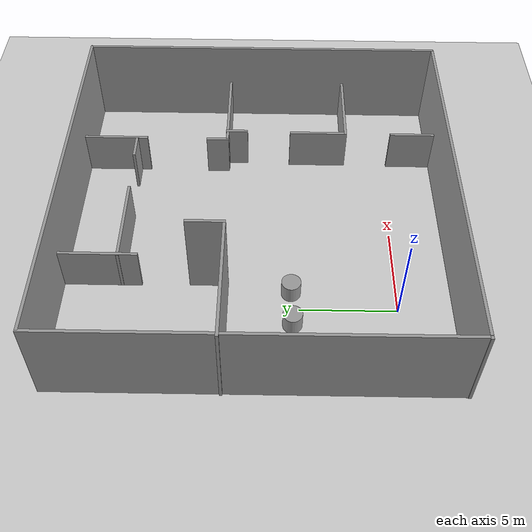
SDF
<sdf version="1.7">
 <world name="default">
  <light name="sun" type="directional">
   <pose>0 0 10 0 -0 0</pose>
   <diffuse>0.8 0.8 0.8 1</diffuse>
   <specular>0.2 0.2 0.2 1</specular>
   <attenuation>
    <range>1000</range>
    <constant>0.9</constant>
    <linear>0.01</linear>
    <quadratic>0.001</quadratic>
   </attenuation>
   <direction>-0.5 0.1 -0.9</direction>
   <spot><inner_angle>0</inner_angle><outer_angle>0</outer_angle><falloff>0</falloff></spot>
  </light>
  <model name="ground_plane">
   <static>1</static>
   <link name="link">
    <collision name="collision">
     <geometry><plane><normal>0 0 1</normal><size>100 100</size></plane></geometry>
     <surface>
      <contact><collide_bitmask>65535</collide_bitmask></contact>
      <friction><ode><mu>100</mu><mu2>50</mu2></ode></friction>
     </surface>
    </collision>
    <visual name="visual">
     <cast_shadows>0</cast_shadows>
     <geometry><plane><normal>0 0 1</normal><size>100 100</size></plane></geometry>
     <material>
      <script><uri>file://media/materials/scripts/gazebo.material</uri><name>Gazebo/Grey</name></script>
     </material>
    </visual>
   </link>
  </model>
  <gravity>0 0 -9.8</gravity>
  <magnetic_field>6e-06 2.3e-05 -4.2e-05</magnetic_field>
  <atmosphere type="adiabatic"/>
  <physics type="ode">
   <max_step_size>0.001</max_step_size>
   <real_time_factor>1</real_time_factor>
   <real_time_update_rate>1000</real_time_update_rate>
  </physics>
  <scene><ambient>0.4 0.4 0.4 1</ambient><background>0.7 0.7 0.7 1</background><shadows>1</shadows></scene>
  <audio><device>default</device></audio>
  <spherical_coordinates>
   <surface_model>EARTH_WGS84</surface_model>
   <latitude_deg>0</latitude_deg>
   <longitude_deg>0</longitude_deg>
   <elevation>0</elevation>
   <heading_deg>0</heading_deg>
  </spherical_coordinates>
  <model name="Untitled">
   <pose>5.18506 7.20775 0 0 -0 0</pose>
   <link name="Wall_19">
    <collision name="Wall_19_Collision">
     <geometry><box><size>20 0.15 5</size></box></geometry>
     <pose>0 0 2.5 0 -0 0</pose>
    </collision>
    <visual name="Wall_19_Visual">
     <pose>0 0 2.5 0 -0 0</pose>
     <geometry><box><size>20 0.15 5</size></box></geometry>
     <material>
      <script><uri>file://media/materials/scripts/gazebo.material</uri><name>Gazebo/Grey</name></script>
      <ambient>1 1 1 1</ambient>
     </material>
     <meta><layer>0</layer></meta>
    </visual>
    <pose>0.039105 9.99508 0 0 -0 0</pose>
   </link>
   <link name="Wall_22">
    <collision name="Wall_22_Collision">
     <geometry><box><size>20 0.15 5</size></box></geometry>
     <pose>0 0 2.5 0 -0 0</pose>
    </collision>
    <visual name="Wall_22_Visual">
     <pose>0 0 2.5 0 -0 0</pose>
     <geometry><box><size>20 0.15 5</size></box></geometry>
     <material>
      <script><uri>file://media/materials/scripts/gazebo.material</uri><name>Gazebo/Grey</name></script>
      <ambient>1 1 1 1</ambient>
     </material>
     <meta><layer>0</layer></meta>
    </visual>
    <pose>0.005833 -10.0652 0 0 -0 0</pose>
   </link>
   <link name="Wall_24">
    <collision name="Wall_24_Collision">
     <geometry><box><size>20.15 0.15 5</size></box></geometry>
     <pose>0 0 2.5 0 -0 0</pose>
    </collision>
    <visual name="Wall_24_Visual">
     <pose>0 0 2.5 0 -0 0</pose>
     <geometry><box><size>20.15 0.15 5</size></box></geometry>
     <material>
      <script><uri>file://media/materials/scripts/gazebo.material</uri><name>Gazebo/Grey</name></script>
      <ambient>1 1 1 1</ambient>
     </material>
     <meta><layer>0</layer></meta>
    </visual>
    <pose>9.97144 -0.042701 0 0 -0 1.5708</pose>
   </link>
   <link name="Wall_27">
    <collision name="Wall_27_Collision">
     <geometry><box><size>6.5 0.15 5</size></box></geometry>
     <pose>0 0 2.5 0 -0 0</pose>
    </collision>
    <visual name="Wall_27_Visual">
     <pose>0 0 2.5 0 -0 0</pose>
     <geometry><box><size>6.5 0.15 5</size></box></geometry>
     <material>
      <script><uri>file://media/materials/scripts/gazebo.material</uri><name>Gazebo/Grey</name></script>
      <ambient>1 1 1 1</ambient>
     </material>
     <meta><layer>0</layer></meta>
    </visual>
    <pose>-6.81556 1.4993 0 0 -0 0</pose>
   </link>
   <link name="Wall_31">
    <collision name="Wall_31_Collision">
     <geometry><box><size>4.25 0.15 2.5</size></box></geometry>
     <pose>0 0 1.25 0 -0 0</pose>
    </collision>
    <visual name="Wall_31_Visual">
     <pose>0 0 1.25 0 -0 0</pose>
     <geometry><box><size>4.25 0.15 2.5</size></box></geometry>
     <material>
      <script><uri>file://media/materials/scripts/gazebo.material</uri><name>Gazebo/Grey</name></script>
      <ambient>1 1 1 1</ambient>
     </material>
     <meta><layer>0</layer></meta>
    </visual>
    <pose>-3.7095 8.01554 0 0 -0 1.5708</pose>
   </link>
   <link name="Wall_33">
    <collision name="Wall_33_Collision">
     <geometry><box><size>4.75 0.15 2.5</size></box></geometry>
     <pose>0 0 1.25 0 -0 0</pose>
    </collision>
    <visual name="Wall_33_Visual">
     <pose>0 0 1.25 0 -0 0</pose>
     <geometry><box><size>4.75 0.15 2.5</size></box></geometry>
     <material>
      <script><uri>file://media/materials/scripts/gazebo.material</uri><name>Gazebo/Grey</name></script>
      <ambient>1 1 1 1</ambient>
     </material>
     <meta><layer>0</layer></meta>
    </visual>
    <pose>-1.42813 6.91349 0 0 -0 0</pose>
   </link>
   <link name="Wall_35">
    <collision name="Wall_35_Collision">
     <geometry><box><size>3.75 0.15 2.5</size></box></geometry>
     <pose>0 0 1.25 0 -0 0</pose>
    </collision>
    <visual name="Wall_35_Visual">
     <pose>0 0 1.25 0 -0 0</pose>
     <geometry><box><size>3.75 0.15 2.5</size></box></geometry>
     <material>
      <script><uri>file://media/materials/scripts/gazebo.material</uri><name>Gazebo/Grey</name></script>
      <ambient>1 1 1 1</ambient>
     </material>
     <meta><layer>0</layer></meta>
    </visual>
    <pose>4.83227 8.23059 0 0 -0 -1.5708</pose>
   </link>
   <link name="Wall_37">
    <collision name="Wall_37_Collision">
     <geometry><box><size>1.5 0.15 2.5</size></box></geometry>
     <pose>0 0 1.25 0 -0 0</pose>
    </collision>
    <visual name="Wall_37_Visual">
     <pose>0 0 1.25 0 -0 0</pose>
     <geometry><box><size>1.5 0.15 2.5</size></box></geometry>
     <material>
      <script><uri>file://media/materials/scripts/gazebo.material</uri><name>Gazebo/Grey</name></script>
      <ambient>1 1 1 1</ambient>
     </material>
     <meta><layer>0</layer></meta>
    </visual>
    <pose>4.11074 6.96001 0 0 -0 3.14159</pose>
   </link>
   <link name="Wall_39">
    <collision name="Wall_39_Collision">
     <geometry><box><size>1.25 0.15 2.5</size></box></geometry>
     <pose>0 0 1.25 0 -0 0</pose>
    </collision>
    <visual name="Wall_39_Visual">
     <pose>0 0 1.25 0 -0 0</pose>
     <geometry><box><size>1.25 0.15 2.5</size></box></geometry>
     <material>
      <script><uri>file://media/materials/scripts/gazebo.material</uri><name>Gazebo/Grey</name></script>
      <ambient>1 1 1 1</ambient>
     </material>
     <meta><layer>0</layer></meta>
    </visual>
    <pose>4.78575 2.36243 0 0 -0 -1.5708</pose>
   </link>
   <link name="Wall_40">
    <collision name="Wall_40_Collision">
     <geometry><box><size>5.25 0.15 2.5</size></box></geometry>
     <pose>0 0 1.25 0 -0 0</pose>
    </collision>
    <visual name="Wall_40_Visual">
     <pose>0 0 1.25 0 -0 0</pose>
     <geometry><box><size>5.25 0.15 2.5</size></box></geometry>
     <material>
      <script><uri>file://media/materials/scripts/gazebo.material</uri><name>Gazebo/Grey</name></script>
      <ambient>1 1 1 1</ambient>
     </material>
     <meta><layer>0</layer></meta>
    </visual>
    <pose>7.33575 1.81243 0 0 -0 0</pose>
   </link>
   <link name="Wall_42">
    <collision name="Wall_42_Collision">
     <geometry><box><size>1.25 0.15 2.5</size></box></geometry>
     <pose>0 0 1.25 0 -0 0</pose>
    </collision>
    <visual name="Wall_42_Visual">
     <pose>0 0 1.25 0 -0 0</pose>
     <geometry><box><size>1.25 0.15 2.5</size></box></geometry>
     <material>
      <script><uri>file://media/materials/scripts/gazebo.material</uri><name>Gazebo/Grey</name></script>
      <ambient>1 1 1 1</ambient>
     </material>
     <meta><layer>0</layer></meta>
    </visual>
    <pose>5.4836 1.29238 0 0 -0 -1.5708</pose>
   </link>
   <link name="Wall_44">
    <collision name="Wall_44_Collision">
     <geometry><box><size>3.25 0.15 2.5</size></box></geometry>
     <pose>0 0 1.25 0 -0 0</pose>
    </collision>
    <visual name="Wall_44_Visual">
     <pose>0 0 1.25 0 -0 0</pose>
     <geometry><box><size>3.25 0.15 2.5</size></box></geometry>
     <material>
      <script><uri>file://media/materials/scripts/gazebo.material</uri><name>Gazebo/Grey</name></script>
      <ambient>1 1 1 1</ambient>
     </material>
     <meta><layer>0</layer></meta>
    </visual>
    <pose>5.39056 -3.38301 0 0 -0 -1.5708</pose>
   </link>
   <link name="Wall_47">
    <collision name="Wall_47_Collision">
     <geometry><box><size>4.75 0.15 2.5</size></box></geometry>
     <pose>0 0 1.25 0 -0 0</pose>
    </collision>
    <visual name="Wall_47_Visual">
     <pose>0 0 1.25 0 -0 0</pose>
     <geometry><box><size>4.75 0.15 2.5</size></box></geometry>
     <material>
      <script><uri>file://media/materials/scripts/gazebo.material</uri><name>Gazebo/Grey</name></script>
      <ambient>1 1 1 1</ambient>
     </material>
     <meta><layer>0</layer></meta>
    </visual>
    <pose>7.69056 -4.93301 0 0 -0 0</pose>
   </link>
   <link name="Wall_49">
    <collision name="Wall_49_Collision">
     <geometry><box><size>2.5 0.15 2.5</size></box></geometry>
     <pose>0 0 1.25 0 -0 0</pose>
    </collision>
    <visual name="Wall_49_Visual">
     <pose>0 0 1.25 0 -0 0</pose>
     <geometry><box><size>2.5 0.15 2.5</size></box></geometry>
     <material>
      <script><uri>file://media/materials/scripts/gazebo.material</uri><name>Gazebo/Grey</name></script>
      <ambient>1 1 1 1</ambient>
     </material>
     <meta><layer>0</layer></meta>
    </visual>
    <pose>5.34403 -8.73045 0 0 -0 -1.5708</pose>
   </link>
   <link name="Wall_8">
    <collision name="Wall_8_Collision">
     <geometry><box><size>20.2105 0.15 5</size></box></geometry>
     <pose>0 0 2.5 0 -0 0</pose>
    </collision>
    <visual name="Wall_8_Visual">
     <pose>0 0 2.5 0 -0 0</pose>
     <geometry><box><size>20.2105 0.15 5</size></box></geometry>
     <material>
      <script><uri>file://media/materials/scripts/gazebo.material</uri><name>Gazebo/Grey</name></script>
      <ambient>1 1 1 1</ambient>
     </material>
     <meta><layer>0</layer></meta>
    </visual>
    <pose>-9.91465 -0.035051 0 0 -0 -1.56661</pose>
   </link>
   <link name="Wall_84">
    <collision name="Wall_84_Collision">
     <geometry><box><size>2 0.15 5</size></box></geometry>
     <pose>0 0 2.5 0 -0 0</pose>
    </collision>
    <visual name="Wall_84_Visual">
     <pose>0 0 2.5 0 -0 0</pose>
     <geometry><box><size>2 0.15 5</size></box></geometry>
     <material>
      <script><uri>file://media/materials/scripts/gazebo.material</uri><name>Gazebo/Grey</name></script>
      <ambient>1 1 1 1</ambient>
     </material>
     <meta><layer>0</layer></meta>
    </visual>
    <pose>-3.64055 2.4243 0 0 -0 1.5708</pose>
   </link>
   <static>1</static>
  </model>
  <model name="unit_cylinder">
   <pose>-0.912223 5.34309 0.499993 -3e-06 -4e-06 -0</pose>
   <link name="link">
    <inertial>
     <mass>1</mass>
     <inertia><ixx>0.145833</ixx><ixy>0</ixy><ixz>0</ixz><iyy>0.145833</iyy><iyz>0</iyz><izz>0.125</izz></inertia>
    </inertial>
    <collision name="collision">
     <geometry><cylinder><radius>0.5</radius><length>1</length></cylinder></geometry>
    </collision>
    <visual name="visual">
     <geometry><cylinder><radius>0.5</radius><length>1</length></cylinder></geometry>
     <material>
      <script><name>Gazebo/Grey</name><uri>file://media/materials/scripts/gazebo.material</uri></script>
     </material>
    </visual>
   </link>
  </model>
  <model name="unit_cylinder_0">
   <pose>1.01536 5.40298 0.499997 3e-06 4e-06 -0</pose>
   <link name="link">
    <inertial>
     <mass>1</mass>
     <inertia><ixx>0.145833</ixx><ixy>0</ixy><ixz>0</ixz><iyy>0.145833</iyy><iyz>0</iyz><izz>0.125</izz></inertia>
    </inertial>
    <collision name="collision">
     <geometry><cylinder><radius>0.5</radius><length>1</length></cylinder></geometry>
    </collision>
    <visual name="visual">
     <geometry><cylinder><radius>0.5</radius><length>1</length></cylinder></geometry>
     <material>
      <script><name>Gazebo/Grey</name><uri>file://media/materials/scripts/gazebo.material</uri></script>
     </material>
    </visual>
   </link>
  </model>
 </world>
</sdf>
